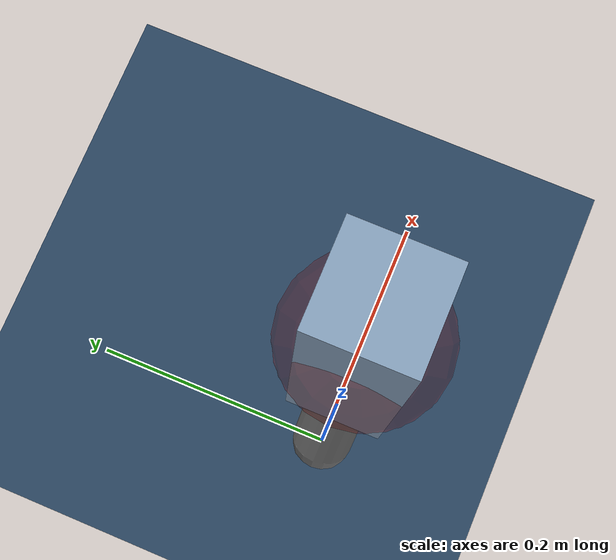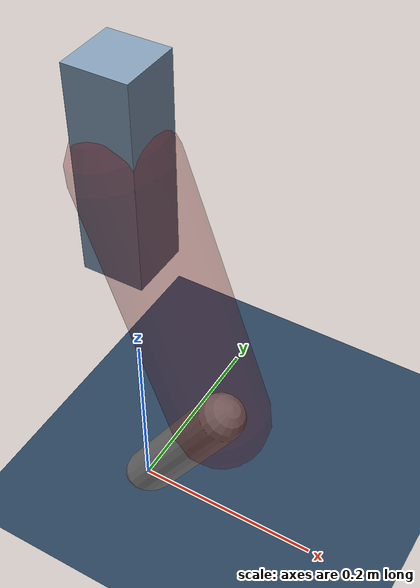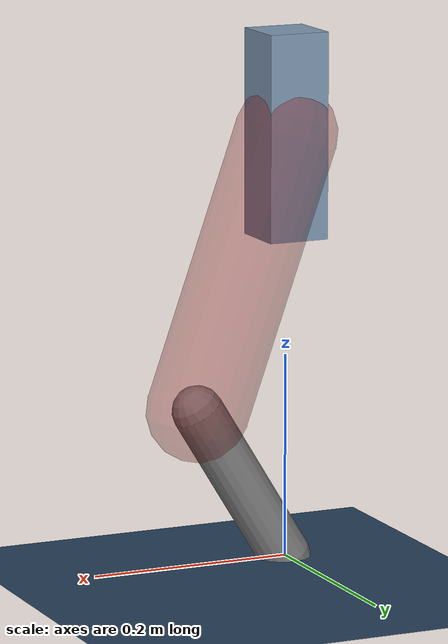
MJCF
<mujoco model="Hopper2D">
	<compiler inertiafromgeom="true" angle="radian" />
	<option timestep="0.001" integrator="implicit" cone="elliptic" solver="Newton" tolerance="1e-10" />

	<default>
		<geom contype="1" conaffinity="1" condim="3" friction="2 0.005 0.0001" solref="0.005 1" />
		<joint limited="true" damping="0.1" />
	</default>

	<asset>
		<texture name="skybox" type="skybox" builtin="gradient" rgb1=".4 .6 .8" rgb2="0 0 0" width="800" height="800" />
		<texture name="grid" type="2d" builtin="checker" rgb1=".1 .2 .3" rgb2=".2 .3 .4" width="300" height="300" mark="edge" markrgb=".2 .3 .4" />
		<material name="ground" texture="grid" texrepeat="1 1" texuniform="true" reflectance="0.1" />
		<material name="leg" rgba="0.5 0.6 0.7 1" />
	</asset>

	<worldbody>

		<geom name="floor" type="plane" size="5 5 0.25" material="ground" />

		<light directional="false" diffuse="0.8 0.8 0.8" specular="0.3 0.3 0.3" pos="0 0 2" dir="0 0 -1" />
		<light mode="targetbodycom" target="base" directional="false" diffuse="0.8 0.8 0.8" specular="0.3 0.3 0.3" pos="0 0 2" dir="0 0 -1" />

		<camera name="fixed" pos="0 -2 1" xyaxes="1 0 0 0 0 1" />
		<camera name="tracking" mode="trackcom" pos="0 -3 1" />

		<body name="root" pos="0 0 0.41633128027561817">
			<joint name="slide_x" type="slide" axis="1 0 0" range="-100 100" />
			<joint name="slide_z" type="slide" axis="0 0 1" range="0 10" />

			<body name="base" pos="0 0 0">
				<geom name="torso" type="box" size="0.03 0.03 0.1" mass="2.466" material="leg" />

				<body name="link1" pos="0 0 0" euler="0 1.2315833923769997 0">
					<joint type="hinge" axis="0 -1 0" pos="0 0 0" name="hinge1" limited="true" range="-3.14 3.14" stiffness="0" damping="0.1" />
					<geom name="thigh" type="capsule" fromto="0 0 0 0.27953249940492186 0 0" size="0.05" rgba="0.5 0 0 0.3" mass="0.9338844984527968" />

					<body name="link2" pos="0.27953249940492186 0 0" euler="0 0.8862335333324892 0">
						<joint type="hinge" axis="0 -1 0" pos="0 0 0" name="hinge2" limited="true" range="-3.14 3.14" stiffness="0" damping="0.1" />
						<geom name="shank" type="capsule" fromto="0 0 0 0.17882139311446166 0 0" size="0.025" mass="0.38285711449156934" />

					</body>
				</body>
			</body>
		</body>
	</worldbody>

	<actuator>
		<motor name="torque1" joint="hinge1" ctrlrange="-92.3179981769871 92.3179981769871" ctrllimited="true" gear="1" />
		<motor name="torque2" joint="hinge2" ctrlrange="-27.4046509372964 27.4046509372964" ctrllimited="true" gear="1" />
	</actuator>
</mujoco>
